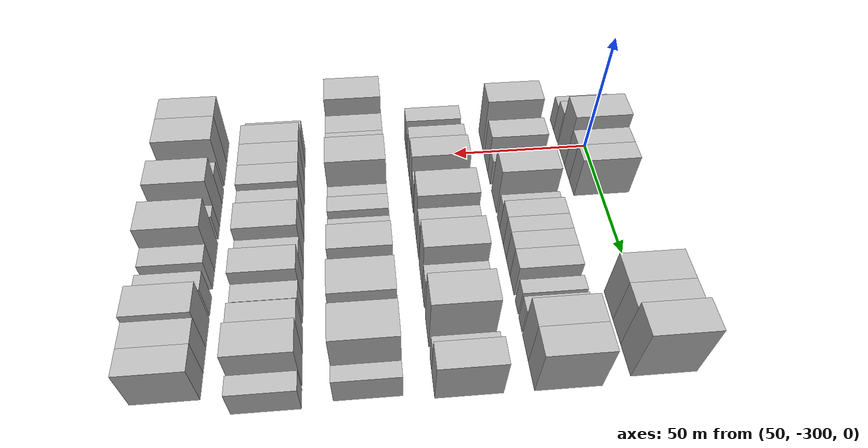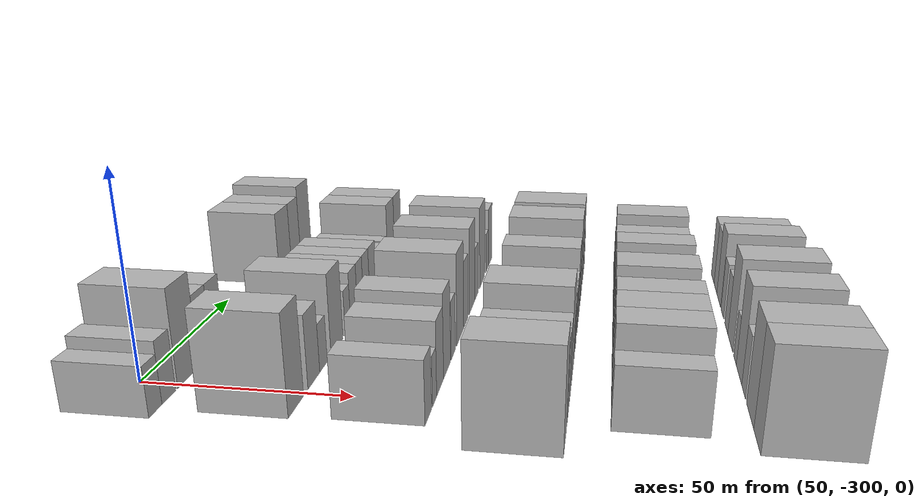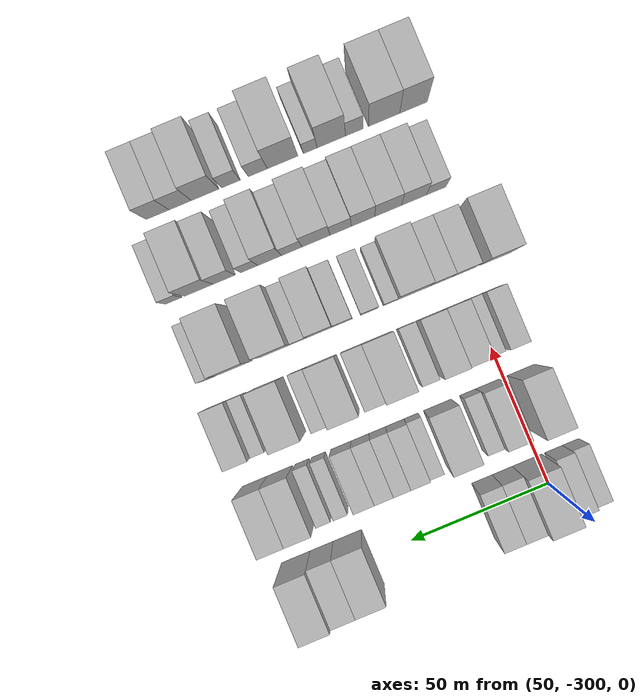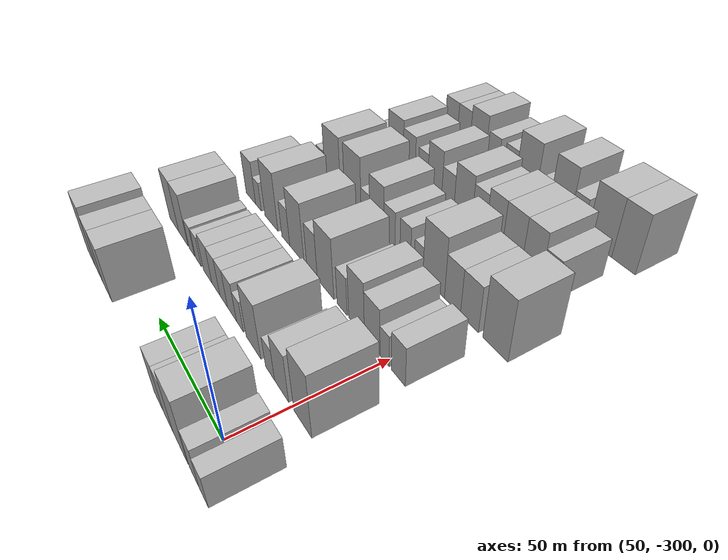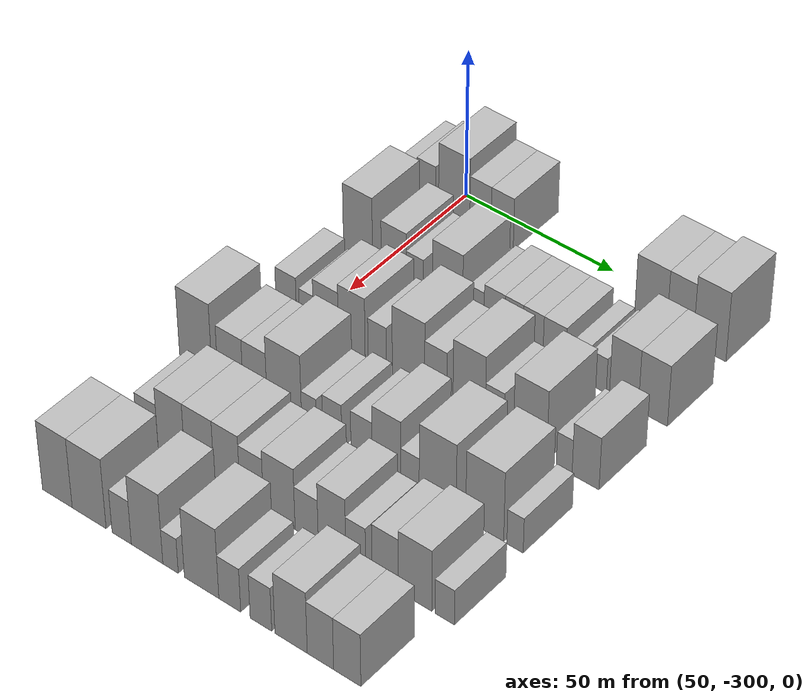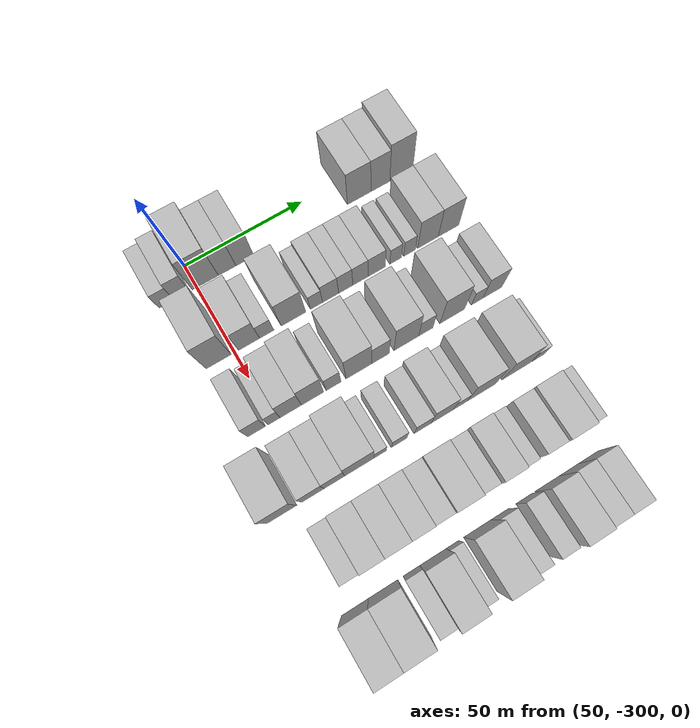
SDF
<sdf version="1.6">
 <world name="default">
  <model name="building_25">
   <static>1</static>
   <pose>50.0000 -312.4087 0 0.000000 0.000000 0.000000</pose>
   <link name="link">
    <pose>0 0 6.00 0 0 0</pose>
    <collision name="collision"><geometry><box><size>20.0000 5.9873 12.0000</size></box></geometry></collision>
    <visual name="visual">
     <cast_shadows>0</cast_shadows>
     <geometry><box><size>20.0000 5.9873 12.0000</size></box></geometry>
     <material>
      <script>
       <uri>model://HANNAS_wall/materials/scripts</uri>
       <uri>model://HANNAS_wall/materials/textures</uri>
       <name>vrc/HANNAS_wall</name>
      </script>
     </material>
    </visual>
   </link>
  </model>
  <model name="building_26">
   <static>1</static>
   <pose>50.0000 -306.1453 0 0.000000 0.000000 0.000000</pose>
   <link name="link">
    <pose>0 0 7.50 0 0 0</pose>
    <collision name="collision"><geometry><box><size>20.0000 6.5395 15.0000</size></box></geometry></collision>
    <visual name="visual">
     <cast_shadows>0</cast_shadows>
     <geometry><box><size>20.0000 6.5395 15.0000</size></box></geometry>
     <material>
      <script>
       <uri>model://HANNAS_wall/materials/scripts</uri>
       <uri>model://HANNAS_wall/materials/textures</uri>
       <name>vrc/HANNAS_wall</name>
      </script>
     </material>
    </visual>
   </link>
  </model>
  <model name="building_27">
   <static>1</static>
   <pose>50.0000 -296.4506 0 0.000000 0.000000 0.000000</pose>
   <link name="link">
    <pose>0 0 12.00 0 0 0</pose>
    <collision name="collision"><geometry><box><size>20.0000 10.8500 24.0000</size></box></geometry></collision>
    <visual name="visual">
     <cast_shadows>0</cast_shadows>
     <geometry><box><size>20.0000 10.8500 24.0000</size></box></geometry>
     <material>
      <script>
       <uri>model://HANNAS_wall/materials/scripts</uri>
       <uri>model://HANNAS_wall/materials/textures</uri>
       <name>vrc/HANNAS_wall</name>
      </script>
     </material>
    </visual>
   </link>
  </model>
  <model name="building_28">
   <static>1</static>
   <pose>50.0000 -287.3589 0 0.000000 0.000000 0.000000</pose>
   <link name="link">
    <pose>0 0 9.00 0 0 0</pose>
    <collision name="collision"><geometry><box><size>20.0000 7.3334 18.0000</size></box></geometry></collision>
    <visual name="visual">
     <cast_shadows>0</cast_shadows>
     <geometry><box><size>20.0000 7.3334 18.0000</size></box></geometry>
     <material>
      <script>
       <uri>model://HANNAS_wall/materials/scripts</uri>
       <uri>model://HANNAS_wall/materials/textures</uri>
       <name>vrc/HANNAS_wall</name>
      </script>
     </material>
    </visual>
   </link>
  </model>
  <model name="building_29">
   <static>1</static>
   <pose>50.0000 -279.9059 0 0.000000 0.000000 0.000000</pose>
   <link name="link">
    <pose>0 0 9.00 0 0 0</pose>
    <collision name="collision"><geometry><box><size>20.0000 7.5727 18.0000</size></box></geometry></collision>
    <visual name="visual">
     <cast_shadows>0</cast_shadows>
     <geometry><box><size>20.0000 7.5727 18.0000</size></box></geometry>
     <material>
      <script>
       <uri>model://HANNAS_wall/materials/scripts</uri>
       <uri>model://HANNAS_wall/materials/textures</uri>
       <name>vrc/HANNAS_wall</name>
      </script>
     </material>
    </visual>
   </link>
  </model>
  <model name="building_30">
   <static>1</static>
   <pose>50.0000 -230.5025 0 0.000000 0.000000 0.000000</pose>
   <link name="link">
    <pose>0 0 10.50 0 0 0</pose>
    <collision name="collision"><geometry><box><size>20.0000 10.4114 21.0000</size></box></geometry></collision>
    <visual name="visual">
     <cast_shadows>0</cast_shadows>
     <geometry><box><size>20.0000 10.4114 21.0000</size></box></geometry>
     <material>
      <script>
       <uri>model://HANNAS_wall/materials/scripts</uri>
       <uri>model://HANNAS_wall/materials/textures</uri>
       <name>vrc/HANNAS_wall</name>
      </script>
     </material>
    </visual>
   </link>
  </model>
  <model name="building_31">
   <static>1</static>
   <pose>50.0000 -221.0695 0 0.000000 0.000000 0.000000</pose>
   <link name="link">
    <pose>0 0 10.50 0 0 0</pose>
    <collision name="collision"><geometry><box><size>20.0000 8.4547 21.0000</size></box></geometry></collision>
    <visual name="visual">
     <cast_shadows>0</cast_shadows>
     <geometry><box><size>20.0000 8.4547 21.0000</size></box></geometry>
     <material>
      <script>
       <uri>model://HANNAS_wall/materials/scripts</uri>
       <uri>model://HANNAS_wall/materials/textures</uri>
       <name>vrc/HANNAS_wall</name>
      </script>
     </material>
    </visual>
   </link>
  </model>
  <model name="building_32">
   <static>1</static>
   <pose>50.0000 -211.6235 0 0.000000 0.000000 0.000000</pose>
   <link name="link">
    <pose>0 0 12.00 0 0 0</pose>
    <collision name="collision"><geometry><box><size>20.0000 10.4373 24.0000</size></box></geometry></collision>
    <visual name="visual">
     <cast_shadows>0</cast_shadows>
     <geometry><box><size>20.0000 10.4373 24.0000</size></box></geometry>
     <material>
      <script>
       <uri>model://HANNAS_wall/materials/scripts</uri>
       <uri>model://HANNAS_wall/materials/textures</uri>
       <name>vrc/HANNAS_wall</name>
      </script>
     </material>
    </visual>
   </link>
  </model>
  <model name="building_137">
   <static>1</static>
   <pose>79.0000 -306.3123 0 0.000000 0.000000 0.000000</pose>
   <link name="link">
    <pose>0 0 12.00 0 0 0</pose>
    <collision name="collision"><geometry><box><size>20.0000 10.0833 24.0000</size></box></geometry></collision>
    <visual name="visual">
     <cast_shadows>0</cast_shadows>
     <geometry><box><size>20.0000 10.0833 24.0000</size></box></geometry>
     <material>
      <script>
       <uri>model://HANNAS_wall/materials/scripts</uri>
       <uri>model://HANNAS_wall/materials/textures</uri>
       <name>vrc/HANNAS_wall</name>
      </script>
     </material>
    </visual>
   </link>
  </model>
  <model name="building_138">
   <static>1</static>
   <pose>79.0000 -293.9563 0 0.000000 0.000000 0.000000</pose>
   <link name="link">
    <pose>0 0 9.00 0 0 0</pose>
    <collision name="collision"><geometry><box><size>20.0000 8.6289 18.0000</size></box></geometry></collision>
    <visual name="visual">
     <cast_shadows>0</cast_shadows>
     <geometry><box><size>20.0000 8.6289 18.0000</size></box></geometry>
     <material>
      <script>
       <uri>model://HANNAS_wall/materials/scripts</uri>
       <uri>model://HANNAS_wall/materials/textures</uri>
       <name>vrc/HANNAS_wall</name>
      </script>
     </material>
    </visual>
   </link>
  </model>
  <model name="building_139">
   <static>1</static>
   <pose>79.0000 -286.7136 0 0.000000 0.000000 0.000000</pose>
   <link name="link">
    <pose>0 0 6.00 0 0 0</pose>
    <collision name="collision"><geometry><box><size>20.0000 5.8564 12.0000</size></box></geometry></collision>
    <visual name="visual">
     <cast_shadows>0</cast_shadows>
     <geometry><box><size>20.0000 5.8564 12.0000</size></box></geometry>
     <material>
      <script>
       <uri>model://HANNAS_wall/materials/scripts</uri>
       <uri>model://HANNAS_wall/materials/textures</uri>
       <name>vrc/HANNAS_wall</name>
      </script>
     </material>
    </visual>
   </link>
  </model>
  <model name="building_140">
   <static>1</static>
   <pose>79.0000 -275.6720 0 0.000000 0.000000 0.000000</pose>
   <link name="link">
    <pose>0 0 10.50 0 0 0</pose>
    <collision name="collision"><geometry><box><size>20.0000 10.2270 21.0000</size></box></geometry></collision>
    <visual name="visual">
     <cast_shadows>0</cast_shadows>
     <geometry><box><size>20.0000 10.2270 21.0000</size></box></geometry>
     <material>
      <script>
       <uri>model://HANNAS_wall/materials/scripts</uri>
       <uri>model://HANNAS_wall/materials/textures</uri>
       <name>vrc/HANNAS_wall</name>
      </script>
     </material>
    </visual>
   </link>
  </model>
  <model name="building_141">
   <static>1</static>
   <pose>79.0000 -266.0007 0 0.000000 0.000000 0.000000</pose>
   <link name="link">
    <pose>0 0 6.00 0 0 0</pose>
    <collision name="collision"><geometry><box><size>20.0000 5.1156 12.0000</size></box></geometry></collision>
    <visual name="visual">
     <cast_shadows>0</cast_shadows>
     <geometry><box><size>20.0000 5.1156 12.0000</size></box></geometry>
     <material>
      <script>
       <uri>model://HANNAS_wall/materials/scripts</uri>
       <uri>model://HANNAS_wall/materials/textures</uri>
       <name>vrc/HANNAS_wall</name>
      </script>
     </material>
    </visual>
   </link>
  </model>
  <model name="building_142">
   <static>1</static>
   <pose>79.0000 -260.0391 0 0.000000 0.000000 0.000000</pose>
   <link name="link">
    <pose>0 0 7.50 0 0 0</pose>
    <collision name="collision"><geometry><box><size>20.0000 6.8076 15.0000</size></box></geometry></collision>
    <visual name="visual">
     <cast_shadows>0</cast_shadows>
     <geometry><box><size>20.0000 6.8076 15.0000</size></box></geometry>
     <material>
      <script>
       <uri>model://HANNAS_wall/materials/scripts</uri>
       <uri>model://HANNAS_wall/materials/textures</uri>
       <name>vrc/HANNAS_wall</name>
      </script>
     </material>
    </visual>
   </link>
  </model>
  <model name="building_143">
   <static>1</static>
   <pose>79.0000 -253.6130 0 0.000000 0.000000 0.000000</pose>
   <link name="link">
    <pose>0 0 7.50 0 0 0</pose>
    <collision name="collision"><geometry><box><size>20.0000 6.0444 15.0000</size></box></geometry></collision>
    <visual name="visual">
     <cast_shadows>0</cast_shadows>
     <geometry><box><size>20.0000 6.0444 15.0000</size></box></geometry>
     <material>
      <script>
       <uri>model://HANNAS_wall/materials/scripts</uri>
       <uri>model://HANNAS_wall/materials/textures</uri>
       <name>vrc/HANNAS_wall</name>
      </script>
     </material>
    </visual>
   </link>
  </model>
  <model name="building_144">
   <static>1</static>
   <pose>79.0000 -247.2893 0 0.000000 0.000000 0.000000</pose>
   <link name="link">
    <pose>0 0 7.50 0 0 0</pose>
    <collision name="collision"><geometry><box><size>20.0000 6.6030 15.0000</size></box></geometry></collision>
    <visual name="visual">
     <cast_shadows>0</cast_shadows>
     <geometry><box><size>20.0000 6.6030 15.0000</size></box></geometry>
     <material>
      <script>
       <uri>model://HANNAS_wall/materials/scripts</uri>
       <uri>model://HANNAS_wall/materials/textures</uri>
       <name>vrc/HANNAS_wall</name>
      </script>
     </material>
    </visual>
   </link>
  </model>
  <model name="building_145">
   <static>1</static>
   <pose>79.0000 -240.3195 0 0.000000 0.000000 0.000000</pose>
   <link name="link">
    <pose>0 0 7.50 0 0 0</pose>
    <collision name="collision"><geometry><box><size>20.0000 7.3366 15.0000</size></box></geometry></collision>
    <visual name="visual">
     <cast_shadows>0</cast_shadows>
     <geometry><box><size>20.0000 7.3366 15.0000</size></box></geometry>
     <material>
      <script>
       <uri>model://HANNAS_wall/materials/scripts</uri>
       <uri>model://HANNAS_wall/materials/textures</uri>
       <name>vrc/HANNAS_wall</name>
      </script>
     </material>
    </visual>
   </link>
  </model>
  <model name="building_146">
   <static>1</static>
   <pose>79.0000 -232.1491 0 0.000000 0.000000 0.000000</pose>
   <link name="link">
    <pose>0 0 6.00 0 0 0</pose>
    <collision name="collision"><geometry><box><size>20.0000 5.0042 12.0000</size></box></geometry></collision>
    <visual name="visual">
     <cast_shadows>0</cast_shadows>
     <geometry><box><size>20.0000 5.0042 12.0000</size></box></geometry>
     <material>
      <script>
       <uri>model://HANNAS_wall/materials/scripts</uri>
       <uri>model://HANNAS_wall/materials/textures</uri>
       <name>vrc/HANNAS_wall</name>
      </script>
     </material>
    </visual>
   </link>
  </model>
  <model name="building_147">
   <static>1</static>
   <pose>79.0000 -226.0842 0 0.000000 0.000000 0.000000</pose>
   <link name="link">
    <pose>0 0 6.00 0 0 0</pose>
    <collision name="collision"><geometry><box><size>20.0000 5.1255 12.0000</size></box></geometry></collision>
    <visual name="visual">
     <cast_shadows>0</cast_shadows>
     <geometry><box><size>20.0000 5.1255 12.0000</size></box></geometry>
     <material>
      <script>
       <uri>model://HANNAS_wall/materials/scripts</uri>
       <uri>model://HANNAS_wall/materials/textures</uri>
       <name>vrc/HANNAS_wall</name>
      </script>
     </material>
    </visual>
   </link>
  </model>
  <model name="building_148">
   <static>1</static>
   <pose>79.0000 -217.9362 0 0.000000 0.000000 0.000000</pose>
   <link name="link">
    <pose>0 0 10.50 0 0 0</pose>
    <collision name="collision"><geometry><box><size>20.0000 9.1706 21.0000</size></box></geometry></collision>
    <visual name="visual">
     <cast_shadows>0</cast_shadows>
     <geometry><box><size>20.0000 9.1706 21.0000</size></box></geometry>
     <material>
      <script>
       <uri>model://HANNAS_wall/materials/scripts</uri>
       <uri>model://HANNAS_wall/materials/textures</uri>
       <name>vrc/HANNAS_wall</name>
      </script>
     </material>
    </visual>
   </link>
  </model>
  <model name="building_149">
   <static>1</static>
   <pose>79.0000 -208.7786 0 0.000000 0.000000 0.000000</pose>
   <link name="link">
    <pose>0 0 10.50 0 0 0</pose>
    <collision name="collision"><geometry><box><size>20.0000 9.1446 21.0000</size></box></geometry></collision>
    <visual name="visual">
     <cast_shadows>0</cast_shadows>
     <geometry><box><size>20.0000 9.1446 21.0000</size></box></geometry>
     <material>
      <script>
       <uri>model://HANNAS_wall/materials/scripts</uri>
       <uri>model://HANNAS_wall/materials/textures</uri>
       <name>vrc/HANNAS_wall</name>
      </script>
     </material>
    </visual>
   </link>
  </model>
  <model name="building_253">
   <static>1</static>
   <pose>108.0000 -306.7581 0 0.000000 0.000000 0.000000</pose>
   <link name="link">
    <pose>0 0 7.50 0 0 0</pose>
    <collision name="collision"><geometry><box><size>20.0000 7.0614 15.0000</size></box></geometry></collision>
    <visual name="visual">
     <cast_shadows>0</cast_shadows>
     <geometry><box><size>20.0000 7.0614 15.0000</size></box></geometry>
     <material>
      <script>
       <uri>model://HANNAS_wall/materials/scripts</uri>
       <uri>model://HANNAS_wall/materials/textures</uri>
       <name>vrc/HANNAS_wall</name>
      </script>
     </material>
    </visual>
   </link>
  </model>
  <model name="building_254">
   <static>1</static>
   <pose>108.0000 -299.8050 0 0.000000 0.000000 0.000000</pose>
   <link name="link">
    <pose>0 0 6.00 0 0 0</pose>
    <collision name="collision"><geometry><box><size>20.0000 4.8448 12.0000</size></box></geometry></collision>
    <visual name="visual">
     <cast_shadows>0</cast_shadows>
     <geometry><box><size>20.0000 4.8448 12.0000</size></box></geometry>
     <material>
      <script>
       <uri>model://HANNAS_wall/materials/scripts</uri>
       <uri>model://HANNAS_wall/materials/textures</uri>
       <name>vrc/HANNAS_wall</name>
      </script>
     </material>
    </visual>
   </link>
  </model>
  <model name="building_255">
   <static>1</static>
   <pose>108.0000 -293.1273 0 0.000000 0.000000 0.000000</pose>
   <link name="link">
    <pose>0 0 9.00 0 0 0</pose>
    <collision name="collision"><geometry><box><size>20.0000 8.5107 18.0000</size></box></geometry></collision>
    <visual name="visual">
     <cast_shadows>0</cast_shadows>
     <geometry><box><size>20.0000 8.5107 18.0000</size></box></geometry>
     <material>
      <script>
       <uri>model://HANNAS_wall/materials/scripts</uri>
       <uri>model://HANNAS_wall/materials/textures</uri>
       <name>vrc/HANNAS_wall</name>
      </script>
     </material>
    </visual>
   </link>
  </model>
  <model name="building_256">
   <static>1</static>
   <pose>108.0000 -284.3667 0 0.000000 0.000000 0.000000</pose>
   <link name="link">
    <pose>0 0 10.50 0 0 0</pose>
    <collision name="collision"><geometry><box><size>20.0000 9.0104 21.0000</size></box></geometry></collision>
    <visual name="visual">
     <cast_shadows>0</cast_shadows>
     <geometry><box><size>20.0000 9.0104 21.0000</size></box></geometry>
     <material>
      <script>
       <uri>model://HANNAS_wall/materials/scripts</uri>
       <uri>model://HANNAS_wall/materials/textures</uri>
       <name>vrc/HANNAS_wall</name>
      </script>
     </material>
    </visual>
   </link>
  </model>
  <model name="building_257">
   <static>1</static>
   <pose>108.0000 -275.8055 0 0.000000 0.000000 0.000000</pose>
   <link name="link">
    <pose>0 0 7.50 0 0 0</pose>
    <collision name="collision"><geometry><box><size>20.0000 6.1119 15.0000</size></box></geometry></collision>
    <visual name="visual">
     <cast_shadows>0</cast_shadows>
     <geometry><box><size>20.0000 6.1119 15.0000</size></box></geometry>
     <material>
      <script>
       <uri>model://HANNAS_wall/materials/scripts</uri>
       <uri>model://HANNAS_wall/materials/textures</uri>
       <name>vrc/HANNAS_wall</name>
      </script>
     </material>
    </visual>
   </link>
  </model>
  <model name="building_258">
   <static>1</static>
   <pose>108.0000 -265.3859 0 0.000000 0.000000 0.000000</pose>
   <link name="link">
    <pose>0 0 12.00 0 0 0</pose>
    <collision name="collision"><geometry><box><size>20.0000 10.7272 24.0000</size></box></geometry></collision>
    <visual name="visual">
     <cast_shadows>0</cast_shadows>
     <geometry><box><size>20.0000 10.7272 24.0000</size></box></geometry>
     <material>
      <script>
       <uri>model://HANNAS_wall/materials/scripts</uri>
       <uri>model://HANNAS_wall/materials/textures</uri>
       <name>vrc/HANNAS_wall</name>
      </script>
     </material>
    </visual>
   </link>
  </model>
  <model name="building_259">
   <static>1</static>
   <pose>108.0000 -256.4051 0 0.000000 0.000000 0.000000</pose>
   <link name="link">
    <pose>0 0 9.00 0 0 0</pose>
    <collision name="collision"><geometry><box><size>20.0000 7.2345 18.0000</size></box></geometry></collision>
    <visual name="visual">
     <cast_shadows>0</cast_shadows>
     <geometry><box><size>20.0000 7.2345 18.0000</size></box></geometry>
     <material>
      <script>
       <uri>model://HANNAS_wall/materials/scripts</uri>
       <uri>model://HANNAS_wall/materials/textures</uri>
       <name>vrc/HANNAS_wall</name>
      </script>
     </material>
    </visual>
   </link>
  </model>
  <model name="building_260">
   <static>1</static>
   <pose>108.0000 -245.5613 0 0.000000 0.000000 0.000000</pose>
   <link name="link">
    <pose>0 0 12.00 0 0 0</pose>
    <collision name="collision"><geometry><box><size>20.0000 10.4530 24.0000</size></box></geometry></collision>
    <visual name="visual">
     <cast_shadows>0</cast_shadows>
     <geometry><box><size>20.0000 10.4530 24.0000</size></box></geometry>
     <material>
      <script>
       <uri>model://HANNAS_wall/materials/scripts</uri>
       <uri>model://HANNAS_wall/materials/textures</uri>
       <name>vrc/HANNAS_wall</name>
      </script>
     </material>
    </visual>
   </link>
  </model>
  <model name="building_261">
   <static>1</static>
   <pose>108.0000 -237.3076 0 0.000000 0.000000 0.000000</pose>
   <link name="link">
    <pose>0 0 7.50 0 0 0</pose>
    <collision name="collision"><geometry><box><size>20.0000 6.0543 15.0000</size></box></geometry></collision>
    <visual name="visual">
     <cast_shadows>0</cast_shadows>
     <geometry><box><size>20.0000 6.0543 15.0000</size></box></geometry>
     <material>
      <script>
       <uri>model://HANNAS_wall/materials/scripts</uri>
       <uri>model://HANNAS_wall/materials/textures</uri>
       <name>vrc/HANNAS_wall</name>
      </script>
     </material>
    </visual>
   </link>
  </model>
  <model name="building_262">
   <static>1</static>
   <pose>108.0000 -225.9643 0 0.000000 0.000000 0.000000</pose>
   <link name="link">
    <pose>0 0 12.00 0 0 0</pose>
    <collision name="collision"><geometry><box><size>20.0000 10.6322 24.0000</size></box></geometry></collision>
    <visual name="visual">
     <cast_shadows>0</cast_shadows>
     <geometry><box><size>20.0000 10.6322 24.0000</size></box></geometry>
     <material>
      <script>
       <uri>model://HANNAS_wall/materials/scripts</uri>
       <uri>model://HANNAS_wall/materials/textures</uri>
       <name>vrc/HANNAS_wall</name>
      </script>
     </material>
    </visual>
   </link>
  </model>
  <model name="building_263">
   <static>1</static>
   <pose>108.0000 -215.1701 0 0.000000 0.000000 0.000000</pose>
   <link name="link">
    <pose>0 0 6.00 0 0 0</pose>
    <collision name="collision"><geometry><box><size>20.0000 4.9564 12.0000</size></box></geometry></collision>
    <visual name="visual">
     <cast_shadows>0</cast_shadows>
     <geometry><box><size>20.0000 4.9564 12.0000</size></box></geometry>
     <material>
      <script>
       <uri>model://HANNAS_wall/materials/scripts</uri>
       <uri>model://HANNAS_wall/materials/textures</uri>
       <name>vrc/HANNAS_wall</name>
      </script>
     </material>
    </visual>
   </link>
  </model>
  <model name="building_264">
   <static>1</static>
   <pose>108.0000 -208.4828 0 0.000000 0.000000 0.000000</pose>
   <link name="link">
    <pose>0 0 9.00 0 0 0</pose>
    <collision name="collision"><geometry><box><size>20.0000 8.4181 18.0000</size></box></geometry></collision>
    <visual name="visual">
     <cast_shadows>0</cast_shadows>
     <geometry><box><size>20.0000 8.4181 18.0000</size></box></geometry>
     <material>
      <script>
       <uri>model://HANNAS_wall/materials/scripts</uri>
       <uri>model://HANNAS_wall/materials/textures</uri>
       <name>vrc/HANNAS_wall</name>
      </script>
     </material>
    </visual>
   </link>
  </model>
  <model name="building_364">
   <static>1</static>
   <pose>137.0000 -312.8626 0 0.000000 0.000000 0.000000</pose>
   <link name="link">
    <pose>0 0 12.00 0 0 0</pose>
    <collision name="collision"><geometry><box><size>20.0000 11.2510 24.0000</size></box></geometry></collision>
    <visual name="visual">
     <cast_shadows>0</cast_shadows>
     <geometry><box><size>20.0000 11.2510 24.0000</size></box></geometry>
     <material>
      <script>
       <uri>model://HANNAS_wall/materials/scripts</uri>
       <uri>model://HANNAS_wall/materials/textures</uri>
       <name>vrc/HANNAS_wall</name>
      </script>
     </material>
    </visual>
   </link>
  </model>
  <model name="building_365">
   <static>1</static>
   <pose>137.0000 -300.8858 0 0.000000 0.000000 0.000000</pose>
   <link name="link">
    <pose>0 0 9.00 0 0 0</pose>
    <collision name="collision"><geometry><box><size>20.0000 8.7028 18.0000</size></box></geometry></collision>
    <visual name="visual">
     <cast_shadows>0</cast_shadows>
     <geometry><box><size>20.0000 8.7028 18.0000</size></box></geometry>
     <material>
      <script>
       <uri>model://HANNAS_wall/materials/scripts</uri>
       <uri>model://HANNAS_wall/materials/textures</uri>
       <name>vrc/HANNAS_wall</name>
      </script>
     </material>
    </visual>
   </link>
  </model>
  <model name="building_366">
   <static>1</static>
   <pose>137.0000 -292.4702 0 0.000000 0.000000 0.000000</pose>
   <link name="link">
    <pose>0 0 9.00 0 0 0</pose>
    <collision name="collision"><geometry><box><size>20.0000 8.1283 18.0000</size></box></geometry></collision>
    <visual name="visual">
     <cast_shadows>0</cast_shadows>
     <geometry><box><size>20.0000 8.1283 18.0000</size></box></geometry>
     <material>
      <script>
       <uri>model://HANNAS_wall/materials/scripts</uri>
       <uri>model://HANNAS_wall/materials/textures</uri>
       <name>vrc/HANNAS_wall</name>
      </script>
     </material>
    </visual>
   </link>
  </model>
  <model name="building_367">
   <static>1</static>
   <pose>137.0000 -282.6036 0 0.000000 0.000000 0.000000</pose>
   <link name="link">
    <pose>0 0 12.00 0 0 0</pose>
    <collision name="collision"><geometry><box><size>20.0000 11.6048 24.0000</size></box></geometry></collision>
    <visual name="visual">
     <cast_shadows>0</cast_shadows>
     <geometry><box><size>20.0000 11.6048 24.0000</size></box></geometry>
     <material>
      <script>
       <uri>model://HANNAS_wall/materials/scripts</uri>
       <uri>model://HANNAS_wall/materials/textures</uri>
       <name>vrc/HANNAS_wall</name>
      </script>
     </material>
    </visual>
   </link>
  </model>
  <model name="building_368">
   <static>1</static>
   <pose>137.0000 -274.2967 0 0.000000 0.000000 0.000000</pose>
   <link name="link">
    <pose>0 0 6.00 0 0 0</pose>
    <collision name="collision"><geometry><box><size>20.0000 5.0090 12.0000</size></box></geometry></collision>
    <visual name="visual">
     <cast_shadows>0</cast_shadows>
     <geometry><box><size>20.0000 5.0090 12.0000</size></box></geometry>
     <material>
      <script>
       <uri>model://HANNAS_wall/materials/scripts</uri>
       <uri>model://HANNAS_wall/materials/textures</uri>
       <name>vrc/HANNAS_wall</name>
      </script>
     </material>
    </visual>
   </link>
  </model>
  <model name="building_369">
   <static>1</static>
   <pose>137.0000 -266.6406 0 0.000000 0.000000 0.000000</pose>
   <link name="link">
    <pose>0 0 7.50 0 0 0</pose>
    <collision name="collision"><geometry><box><size>20.0000 6.3032 15.0000</size></box></geometry></collision>
    <visual name="visual">
     <cast_shadows>0</cast_shadows>
     <geometry><box><size>20.0000 6.3032 15.0000</size></box></geometry>
     <material>
      <script>
       <uri>model://HANNAS_wall/materials/scripts</uri>
       <uri>model://HANNAS_wall/materials/textures</uri>
       <name>vrc/HANNAS_wall</name>
      </script>
     </material>
    </visual>
   </link>
  </model>
  <model name="building_370">
   <static>1</static>
   <pose>137.0000 -257.0243 0 0.000000 0.000000 0.000000</pose>
   <link name="link">
    <pose>0 0 7.50 0 0 0</pose>
    <collision name="collision"><geometry><box><size>20.0000 6.9293 15.0000</size></box></geometry></collision>
    <visual name="visual">
     <cast_shadows>0</cast_shadows>
     <geometry><box><size>20.0000 6.9293 15.0000</size></box></geometry>
     <material>
      <script>
       <uri>model://HANNAS_wall/materials/scripts</uri>
       <uri>model://HANNAS_wall/materials/textures</uri>
       <name>vrc/HANNAS_wall</name>
      </script>
     </material>
    </visual>
   </link>
  </model>
  <model name="building_371">
   <static>1</static>
   <pose>137.0000 -248.9349 0 0.000000 0.000000 0.000000</pose>
   <link name="link">
    <pose>0 0 10.50 0 0 0</pose>
    <collision name="collision"><geometry><box><size>20.0000 9.2494 21.0000</size></box></geometry></collision>
    <visual name="visual">
     <cast_shadows>0</cast_shadows>
     <geometry><box><size>20.0000 9.2494 21.0000</size></box></geometry>
     <material>
      <script>
       <uri>model://HANNAS_wall/materials/scripts</uri>
       <uri>model://HANNAS_wall/materials/textures</uri>
       <name>vrc/HANNAS_wall</name>
      </script>
     </material>
    </visual>
   </link>
  </model>
  <model name="building_372">
   <static>1</static>
   <pose>137.0000 -241.3812 0 0.000000 0.000000 0.000000</pose>
   <link name="link">
    <pose>0 0 6.00 0 0 0</pose>
    <collision name="collision"><geometry><box><size>20.0000 5.8580 12.0000</size></box></geometry></collision>
    <visual name="visual">
     <cast_shadows>0</cast_shadows>
     <geometry><box><size>20.0000 5.8580 12.0000</size></box></geometry>
     <material>
      <script>
       <uri>model://HANNAS_wall/materials/scripts</uri>
       <uri>model://HANNAS_wall/materials/textures</uri>
       <name>vrc/HANNAS_wall</name>
      </script>
     </material>
    </visual>
   </link>
  </model>
  <model name="building_373">
   <static>1</static>
   <pose>137.0000 -232.5692 0 0.000000 0.000000 0.000000</pose>
   <link name="link">
    <pose>0 0 12.00 0 0 0</pose>
    <collision name="collision"><geometry><box><size>20.0000 11.7659 24.0000</size></box></geometry></collision>
    <visual name="visual">
     <cast_shadows>0</cast_shadows>
     <geometry><box><size>20.0000 11.7659 24.0000</size></box></geometry>
     <material>
      <script>
       <uri>model://HANNAS_wall/materials/scripts</uri>
       <uri>model://HANNAS_wall/materials/textures</uri>
       <name>vrc/HANNAS_wall</name>
      </script>
     </material>
    </visual>
   </link>
  </model>
  <model name="building_374">
   <static>1</static>
   <pose>137.0000 -217.7586 0 0.000000 0.000000 0.000000</pose>
   <link name="link">
    <pose>0 0 12.00 0 0 0</pose>
    <collision name="collision"><geometry><box><size>20.0000 11.8552 24.0000</size></box></geometry></collision>
    <visual name="visual">
     <cast_shadows>0</cast_shadows>
     <geometry><box><size>20.0000 11.8552 24.0000</size></box></geometry>
     <material>
      <script>
       <uri>model://HANNAS_wall/materials/scripts</uri>
       <uri>model://HANNAS_wall/materials/textures</uri>
       <name>vrc/HANNAS_wall</name>
      </script>
     </material>
    </visual>
   </link>
  </model>
  <model name="building_375">
   <static>1</static>
   <pose>137.0000 -208.3119 0 0.000000 0.000000 0.000000</pose>
   <link name="link">
    <pose>0 0 6.00 0 0 0</pose>
    <collision name="collision"><geometry><box><size>20.0000 5.0382 12.0000</size></box></geometry></collision>
    <visual name="visual">
     <cast_shadows>0</cast_shadows>
     <geometry><box><size>20.0000 5.0382 12.0000</size></box></geometry>
     <material>
      <script>
       <uri>model://HANNAS_wall/materials/scripts</uri>
       <uri>model://HANNAS_wall/materials/textures</uri>
       <name>vrc/HANNAS_wall</name>
      </script>
     </material>
    </visual>
   </link>
  </model>
  <model name="building_482">
   <static>1</static>
   <pose>166.0000 -303.2805 0 0.000000 0.000000 0.000000</pose>
   <link name="link">
    <pose>0 0 7.50 0 0 0</pose>
    <collision name="collision"><geometry><box><size>20.0000 7.1866 15.0000</size></box></geometry></collision>
    <visual name="visual">
     <cast_shadows>0</cast_shadows>
     <geometry><box><size>20.0000 7.1866 15.0000</size></box></geometry>
     <material>
      <script>
       <uri>model://HANNAS_wall/materials/scripts</uri>
       <uri>model://HANNAS_wall/materials/textures</uri>
       <name>vrc/HANNAS_wall</name>
      </script>
     </material>
    </visual>
   </link>
  </model>
  <model name="building_483">
   <static>1</static>
   <pose>166.0000 -295.1246 0 0.000000 0.000000 0.000000</pose>
   <link name="link">
    <pose>0 0 10.50 0 0 0</pose>
    <collision name="collision"><geometry><box><size>20.0000 9.1251 21.0000</size></box></geometry></collision>
    <visual name="visual">
     <cast_shadows>0</cast_shadows>
     <geometry><box><size>20.0000 9.1251 21.0000</size></box></geometry>
     <material>
      <script>
       <uri>model://HANNAS_wall/materials/scripts</uri>
       <uri>model://HANNAS_wall/materials/textures</uri>
       <name>vrc/HANNAS_wall</name>
      </script>
     </material>
    </visual>
   </link>
  </model>
  <model name="building_484">
   <static>1</static>
   <pose>166.0000 -285.6597 0 0.000000 0.000000 0.000000</pose>
   <link name="link">
    <pose>0 0 10.50 0 0 0</pose>
    <collision name="collision"><geometry><box><size>20.0000 9.8047 21.0000</size></box></geometry></collision>
    <visual name="visual">
     <cast_shadows>0</cast_shadows>
     <geometry><box><size>20.0000 9.8047 21.0000</size></box></geometry>
     <material>
      <script>
       <uri>model://HANNAS_wall/materials/scripts</uri>
       <uri>model://HANNAS_wall/materials/textures</uri>
       <name>vrc/HANNAS_wall</name>
      </script>
     </material>
    </visual>
   </link>
  </model>
  <model name="building_485">
   <static>1</static>
   <pose>166.0000 -276.4741 0 0.000000 0.000000 0.000000</pose>
   <link name="link">
    <pose>0 0 10.50 0 0 0</pose>
    <collision name="collision"><geometry><box><size>20.0000 8.5664 21.0000</size></box></geometry></collision>
    <visual name="visual">
     <cast_shadows>0</cast_shadows>
     <geometry><box><size>20.0000 8.5664 21.0000</size></box></geometry>
     <material>
      <script>
       <uri>model://HANNAS_wall/materials/scripts</uri>
       <uri>model://HANNAS_wall/materials/textures</uri>
       <name>vrc/HANNAS_wall</name>
      </script>
     </material>
    </visual>
   </link>
  </model>
  <model name="building_486">
   <static>1</static>
   <pose>166.0000 -268.3331 0 0.000000 0.000000 0.000000</pose>
   <link name="link">
    <pose>0 0 9.00 0 0 0</pose>
    <collision name="collision"><geometry><box><size>20.0000 7.7157 18.0000</size></box></geometry></collision>
    <visual name="visual">
     <cast_shadows>0</cast_shadows>
     <geometry><box><size>20.0000 7.7157 18.0000</size></box></geometry>
     <material>
      <script>
       <uri>model://HANNAS_wall/materials/scripts</uri>
       <uri>model://HANNAS_wall/materials/textures</uri>
       <name>vrc/HANNAS_wall</name>
      </script>
     </material>
    </visual>
   </link>
  </model>
  <model name="building_487">
   <static>1</static>
   <pose>166.0000 -259.3669 0 0.000000 0.000000 0.000000</pose>
   <link name="link">
    <pose>0 0 10.50 0 0 0</pose>
    <collision name="collision"><geometry><box><size>20.0000 10.2168 21.0000</size></box></geometry></collision>
    <visual name="visual">
     <cast_shadows>0</cast_shadows>
     <geometry><box><size>20.0000 10.2168 21.0000</size></box></geometry>
     <material>
      <script>
       <uri>model://HANNAS_wall/materials/scripts</uri>
       <uri>model://HANNAS_wall/materials/textures</uri>
       <name>vrc/HANNAS_wall</name>
      </script>
     </material>
    </visual>
   </link>
  </model>
  <model name="building_488">
   <static>1</static>
   <pose>166.0000 -250.5248 0 0.000000 0.000000 0.000000</pose>
   <link name="link">
    <pose>0 0 7.50 0 0 0</pose>
    <collision name="collision"><geometry><box><size>20.0000 7.4674 15.0000</size></box></geometry></collision>
    <visual name="visual">
     <cast_shadows>0</cast_shadows>
     <geometry><box><size>20.0000 7.4674 15.0000</size></box></geometry>
     <material>
      <script>
       <uri>model://HANNAS_wall/materials/scripts</uri>
       <uri>model://HANNAS_wall/materials/textures</uri>
       <name>vrc/HANNAS_wall</name>
      </script>
     </material>
    </visual>
   </link>
  </model>
  <model name="building_489">
   <static>1</static>
   <pose>166.0000 -242.3876 0 0.000000 0.000000 0.000000</pose>
   <link name="link">
    <pose>0 0 10.50 0 0 0</pose>
    <collision name="collision"><geometry><box><size>20.0000 8.8069 21.0000</size></box></geometry></collision>
    <visual name="visual">
     <cast_shadows>0</cast_shadows>
     <geometry><box><size>20.0000 8.8069 21.0000</size></box></geometry>
     <material>
      <script>
       <uri>model://HANNAS_wall/materials/scripts</uri>
       <uri>model://HANNAS_wall/materials/textures</uri>
       <name>vrc/HANNAS_wall</name>
      </script>
     </material>
    </visual>
   </link>
  </model>
  <model name="building_490">
   <static>1</static>
   <pose>166.0000 -234.8578 0 0.000000 0.000000 0.000000</pose>
   <link name="link">
    <pose>0 0 7.50 0 0 0</pose>
    <collision name="collision"><geometry><box><size>20.0000 6.2528 15.0000</size></box></geometry></collision>
    <visual name="visual">
     <cast_shadows>0</cast_shadows>
     <geometry><box><size>20.0000 6.2528 15.0000</size></box></geometry>
     <material>
      <script>
       <uri>model://HANNAS_wall/materials/scripts</uri>
       <uri>model://HANNAS_wall/materials/textures</uri>
       <name>vrc/HANNAS_wall</name>
      </script>
     </material>
    </visual>
   </link>
  </model>
  <model name="building_491">
   <static>1</static>
   <pose>166.0000 -225.6512 0 0.000000 0.000000 0.000000</pose>
   <link name="link">
    <pose>0 0 9.00 0 0 0</pose>
    <collision name="collision"><geometry><box><size>20.0000 8.1604 18.0000</size></box></geometry></collision>
    <visual name="visual">
     <cast_shadows>0</cast_shadows>
     <geometry><box><size>20.0000 8.1604 18.0000</size></box></geometry>
     <material>
      <script>
       <uri>model://HANNAS_wall/materials/scripts</uri>
       <uri>model://HANNAS_wall/materials/textures</uri>
       <name>vrc/HANNAS_wall</name>
      </script>
     </material>
    </visual>
   </link>
  </model>
  <model name="building_492">
   <static>1</static>
   <pose>166.0000 -216.3642 0 0.000000 0.000000 0.000000</pose>
   <link name="link">
    <pose>0 0 10.50 0 0 0</pose>
    <collision name="collision"><geometry><box><size>20.0000 10.4136 21.0000</size></box></geometry></collision>
    <visual name="visual">
     <cast_shadows>0</cast_shadows>
     <geometry><box><size>20.0000 10.4136 21.0000</size></box></geometry>
     <material>
      <script>
       <uri>model://HANNAS_wall/materials/scripts</uri>
       <uri>model://HANNAS_wall/materials/textures</uri>
       <name>vrc/HANNAS_wall</name>
      </script>
     </material>
    </visual>
   </link>
  </model>
  <model name="building_493">
   <static>1</static>
   <pose>166.0000 -207.1696 0 0.000000 0.000000 0.000000</pose>
   <link name="link">
    <pose>0 0 6.00 0 0 0</pose>
    <collision name="collision"><geometry><box><size>20.0000 5.9757 12.0000</size></box></geometry></collision>
    <visual name="visual">
     <cast_shadows>0</cast_shadows>
     <geometry><box><size>20.0000 5.9757 12.0000</size></box></geometry>
     <material>
      <script>
       <uri>model://HANNAS_wall/materials/scripts</uri>
       <uri>model://HANNAS_wall/materials/textures</uri>
       <name>vrc/HANNAS_wall</name>
      </script>
     </material>
    </visual>
   </link>
  </model>
  <model name="building_595">
   <static>1</static>
   <pose>195.0000 -307.1422 0 0.000000 0.000000 0.000000</pose>
   <link name="link">
    <pose>0 0 12.00 0 0 0</pose>
    <collision name="collision"><geometry><box><size>20.0000 10.1224 24.0000</size></box></geometry></collision>
    <visual name="visual">
     <cast_shadows>0</cast_shadows>
     <geometry><box><size>20.0000 10.1224 24.0000</size></box></geometry>
     <material>
      <script>
       <uri>model://HANNAS_wall/materials/scripts</uri>
       <uri>model://HANNAS_wall/materials/textures</uri>
       <name>vrc/HANNAS_wall</name>
      </script>
     </material>
    </visual>
   </link>
  </model>
  <model name="building_596">
   <static>1</static>
   <pose>195.0000 -296.3597 0 0.000000 0.000000 0.000000</pose>
   <link name="link">
    <pose>0 0 12.00 0 0 0</pose>
    <collision name="collision"><geometry><box><size>20.0000 11.4425 24.0000</size></box></geometry></collision>
    <visual name="visual">
     <cast_shadows>0</cast_shadows>
     <geometry><box><size>20.0000 11.4425 24.0000</size></box></geometry>
     <material>
      <script>
       <uri>model://HANNAS_wall/materials/scripts</uri>
       <uri>model://HANNAS_wall/materials/textures</uri>
       <name>vrc/HANNAS_wall</name>
      </script>
     </material>
    </visual>
   </link>
  </model>
  <model name="building_597">
   <static>1</static>
   <pose>195.0000 -285.4368 0 0.000000 0.000000 0.000000</pose>
   <link name="link">
    <pose>0 0 7.50 0 0 0</pose>
    <collision name="collision"><geometry><box><size>20.0000 6.4034 15.0000</size></box></geometry></collision>
    <visual name="visual">
     <cast_shadows>0</cast_shadows>
     <geometry><box><size>20.0000 6.4034 15.0000</size></box></geometry>
     <material>
      <script>
       <uri>model://HANNAS_wall/materials/scripts</uri>
       <uri>model://HANNAS_wall/materials/textures</uri>
       <name>vrc/HANNAS_wall</name>
      </script>
     </material>
    </visual>
   </link>
  </model>
  <model name="building_598">
   <static>1</static>
   <pose>195.0000 -277.0363 0 0.000000 0.000000 0.000000</pose>
   <link name="link">
    <pose>0 0 12.00 0 0 0</pose>
    <collision name="collision"><geometry><box><size>20.0000 10.3976 24.0000</size></box></geometry></collision>
    <visual name="visual">
     <cast_shadows>0</cast_shadows>
     <geometry><box><size>20.0000 10.3976 24.0000</size></box></geometry>
     <material>
      <script>
       <uri>model://HANNAS_wall/materials/scripts</uri>
       <uri>model://HANNAS_wall/materials/textures</uri>
       <name>vrc/HANNAS_wall</name>
      </script>
     </material>
    </visual>
   </link>
  </model>
  <model name="building_599">
   <static>1</static>
   <pose>195.0000 -269.3150 0 0.000000 0.000000 0.000000</pose>
   <link name="link">
    <pose>0 0 6.00 0 0 0</pose>
    <collision name="collision"><geometry><box><size>20.0000 5.0449 12.0000</size></box></geometry></collision>
    <visual name="visual">
     <cast_shadows>0</cast_shadows>
     <geometry><box><size>20.0000 5.0449 12.0000</size></box></geometry>
     <material>
      <script>
       <uri>model://HANNAS_wall/materials/scripts</uri>
       <uri>model://HANNAS_wall/materials/textures</uri>
       <name>vrc/HANNAS_wall</name>
      </script>
     </material>
    </visual>
   </link>
  </model>
  <model name="building_600">
   <static>1</static>
   <pose>195.0000 -259.2241 0 0.000000 0.000000 0.000000</pose>
   <link name="link">
    <pose>0 0 12.00 0 0 0</pose>
    <collision name="collision"><geometry><box><size>20.0000 11.1368 24.0000</size></box></geometry></collision>
    <visual name="visual">
     <cast_shadows>0</cast_shadows>
     <geometry><box><size>20.0000 11.1368 24.0000</size></box></geometry>
     <material>
      <script>
       <uri>model://HANNAS_wall/materials/scripts</uri>
       <uri>model://HANNAS_wall/materials/textures</uri>
       <name>vrc/HANNAS_wall</name>
      </script>
     </material>
    </visual>
   </link>
  </model>
  <model name="building_601">
   <static>1</static>
   <pose>195.0000 -250.1600 0 0.000000 0.000000 0.000000</pose>
   <link name="link">
    <pose>0 0 7.50 0 0 0</pose>
    <collision name="collision"><geometry><box><size>20.0000 6.9914 15.0000</size></box></geometry></collision>
    <visual name="visual">
     <cast_shadows>0</cast_shadows>
     <geometry><box><size>20.0000 6.9914 15.0000</size></box></geometry>
     <material>
      <script>
       <uri>model://HANNAS_wall/materials/scripts</uri>
       <uri>model://HANNAS_wall/materials/textures</uri>
       <name>vrc/HANNAS_wall</name>
      </script>
     </material>
    </visual>
   </link>
  </model>
  <model name="building_602">
   <static>1</static>
   <pose>195.0000 -240.2477 0 0.000000 0.000000 0.000000</pose>
   <link name="link">
    <pose>0 0 7.50 0 0 0</pose>
    <collision name="collision"><geometry><box><size>20.0000 6.8332 15.0000</size></box></geometry></collision>
    <visual name="visual">
     <cast_shadows>0</cast_shadows>
     <geometry><box><size>20.0000 6.8332 15.0000</size></box></geometry>
     <material>
      <script>
       <uri>model://HANNAS_wall/materials/scripts</uri>
       <uri>model://HANNAS_wall/materials/textures</uri>
       <name>vrc/HANNAS_wall</name>
      </script>
     </material>
    </visual>
   </link>
  </model>
  <model name="building_603">
   <static>1</static>
   <pose>195.0000 -230.7807 0 0.000000 0.000000 0.000000</pose>
   <link name="link">
    <pose>0 0 10.50 0 0 0</pose>
    <collision name="collision"><geometry><box><size>20.0000 10.1006 21.0000</size></box></geometry></collision>
    <visual name="visual">
     <cast_shadows>0</cast_shadows>
     <geometry><box><size>20.0000 10.1006 21.0000</size></box></geometry>
     <material>
      <script>
       <uri>model://HANNAS_wall/materials/scripts</uri>
       <uri>model://HANNAS_wall/materials/textures</uri>
       <name>vrc/HANNAS_wall</name>
      </script>
     </material>
    </visual>
   </link>
  </model>
  <model name="building_604">
   <static>1</static>
   <pose>195.0000 -221.6433 0 0.000000 0.000000 0.000000</pose>
   <link name="link">
    <pose>0 0 9.00 0 0 0</pose>
    <collision name="collision"><geometry><box><size>20.0000 8.1742 18.0000</size></box></geometry></collision>
    <visual name="visual">
     <cast_shadows>0</cast_shadows>
     <geometry><box><size>20.0000 8.1742 18.0000</size></box></geometry>
     <material>
      <script>
       <uri>model://HANNAS_wall/materials/scripts</uri>
       <uri>model://HANNAS_wall/materials/textures</uri>
       <name>vrc/HANNAS_wall</name>
      </script>
     </material>
    </visual>
   </link>
  </model>
  <model name="building_605">
   <static>1</static>
   <pose>195.0000 -213.3864 0 0.000000 0.000000 0.000000</pose>
   <link name="link">
    <pose>0 0 9.00 0 0 0</pose>
    <collision name="collision"><geometry><box><size>20.0000 8.3396 18.0000</size></box></geometry></collision>
    <visual name="visual">
     <cast_shadows>0</cast_shadows>
     <geometry><box><size>20.0000 8.3396 18.0000</size></box></geometry>
     <material>
      <script>
       <uri>model://HANNAS_wall/materials/scripts</uri>
       <uri>model://HANNAS_wall/materials/textures</uri>
       <name>vrc/HANNAS_wall</name>
      </script>
     </material>
    </visual>
   </link>
  </model>
 </world>
</sdf>
